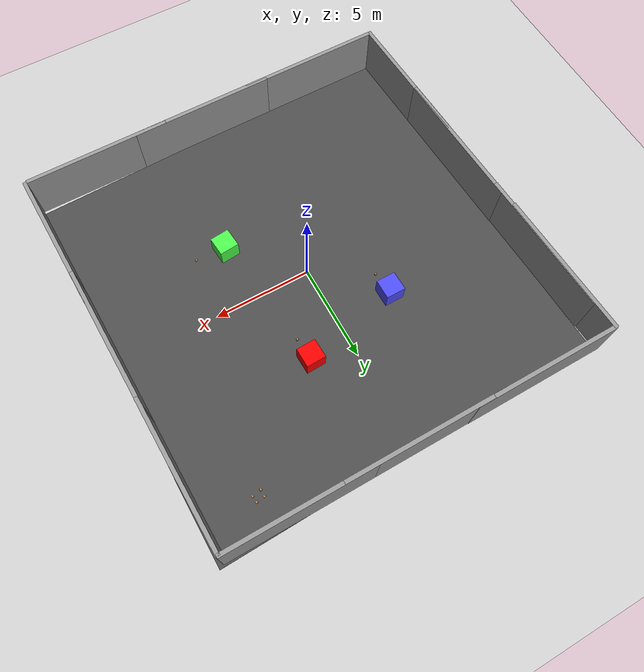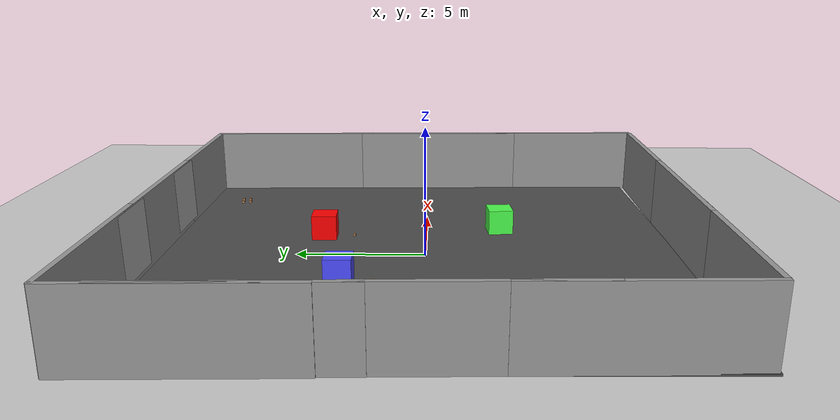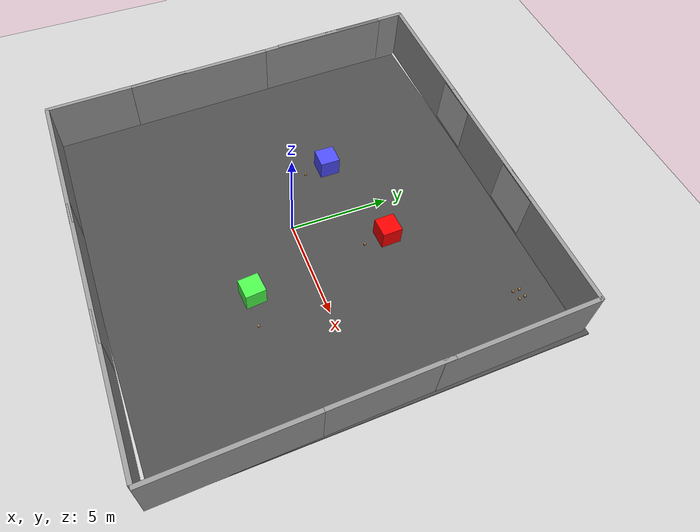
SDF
<sdf version="1.7">
 <world name="default">
  <light name="sun" type="directional">
   <pose>0 0 10 0 -0 0</pose>
   <diffuse>0.8 0.8 0.8 1</diffuse>
   <specular>0.2 0.2 0.2 1</specular>
   <attenuation>
    <range>1000</range>
    <constant>0.9</constant>
    <linear>0.01</linear>
    <quadratic>0.001</quadratic>
   </attenuation>
   <direction>-0.5 0.1 -0.9</direction>
   <spot><inner_angle>0</inner_angle><outer_angle>0</outer_angle><falloff>0</falloff></spot>
  </light>
  <model name="ground_plane">
   <static>1</static>
   <link name="link">
    <collision name="collision">
     <geometry><plane><normal>0 0 1</normal><size>100 100</size></plane></geometry>
     <surface>
      <contact><collide_bitmask>65535</collide_bitmask></contact>
      <friction><ode><mu>100</mu><mu2>50</mu2></ode></friction>
     </surface>
    </collision>
    <visual name="visual">
     <cast_shadows>0</cast_shadows>
     <geometry><plane><normal>0 0 1</normal><size>100 100</size></plane></geometry>
     <material>
      <script><uri>file://media/materials/scripts/gazebo.material</uri><name>Gazebo/Grey</name></script>
     </material>
    </visual>
   </link>
  </model>
  <gravity>0 0 -9.8</gravity>
  <magnetic_field>6e-06 2.3e-05 -4.2e-05</magnetic_field>
  <atmosphere type="adiabatic"/>
  <physics type="ode">
   <max_step_size>0.001</max_step_size>
   <real_time_factor>1</real_time_factor>
   <real_time_update_rate>1000</real_time_update_rate>
  </physics>
  <scene><ambient>0.4 0.4 0.4 1</ambient><background>0.7 0.7 0.7 1</background><shadows>1</shadows></scene>
  <audio><device>default</device></audio>
  <spherical_coordinates>
   <surface_model>EARTH_WGS84</surface_model>
   <latitude_deg>0</latitude_deg>
   <longitude_deg>0</longitude_deg>
   <elevation>0</elevation>
   <heading_deg>0</heading_deg>
  </spherical_coordinates>
  <model name="grey_wall">
   <static>1</static>
   <link name="link">
    <pose>0 0 1.4 0 -0 0</pose>
    <collision name="collision"><geometry><box><size>7.5 0.2 2.8</size></box></geometry></collision>
    <visual name="visual">
     <cast_shadows>0</cast_shadows>
     <geometry><box><size>7.5 0.2 2.8</size></box></geometry>
     <material>
      <script>
       <uri>model://grey_wall/materials/scripts</uri>
       <uri>model://grey_wall/materials/textures</uri>
       <name>vrc/grey_wall</name>
      </script>
     </material>
    </visual>
   </link>
   <pose>0.174565 10.2315 0 0 -0 0</pose>
  </model>
  <model name="grey_wall_0">
   <static>1</static>
   <link name="link">
    <pose>0 0 1.4 0 -0 0</pose>
    <collision name="collision"><geometry><box><size>7.5 0.2 2.8</size></box></geometry></collision>
    <visual name="visual">
     <cast_shadows>0</cast_shadows>
     <geometry><box><size>7.5 0.2 2.8</size></box></geometry>
     <material>
      <script>
       <uri>model://grey_wall/materials/scripts</uri>
       <uri>model://grey_wall/materials/textures</uri>
       <name>vrc/grey_wall</name>
      </script>
     </material>
    </visual>
   </link>
   <pose>0.73557 -9.85283 0 0 -0 0</pose>
  </model>
  <model name="warehousewalls">
   <link name="link">
    <pose>0 0 1.4 0 -0 0</pose>
    <visual name="visual">
     <cast_shadows>0</cast_shadows>
     <geometry><box><size>7.5 0.2 2.8</size></box></geometry>
     <material>
      <script>
       <uri>model://grey_wall/materials/scripts</uri>
       <uri>model://grey_wall/materials/textures</uri>
       <name>vrc/grey_wall</name>
      </script>
      <shader type="pixel"/>
     </material>
    </visual>
    <collision name="collision">
     <geometry><box><size>7.5 0.2 2.8</size></box></geometry>
     <surface>
      <friction>
       <ode><mu>1</mu><mu2>1</mu2><fdir1>0 0 0</fdir1><slip1>0</slip1><slip2>0</slip2></ode>
       <torsional>
        <coefficient>1</coefficient>
        <patch_radius>0</patch_radius>
        <surface_radius>0</surface_radius>
        <use_patch_radius>1</use_patch_radius>
        <ode><slip>0</slip></ode>
       </torsional>
      </friction>
      <bounce><restitution_coefficient>0</restitution_coefficient><threshold>1e+06</threshold></bounce>
      <contact>
       <collide_without_contact>0</collide_without_contact>
       <collide_without_contact_bitmask>1</collide_without_contact_bitmask>
       <collide_bitmask>1</collide_bitmask>
       <ode>
        <soft_cfm>0</soft_cfm>
        <soft_erp>0.2</soft_erp>
        <kp>1e+13</kp>
        <kd>1</kd>
        <max_vel>0.01</max_vel>
        <min_depth>0</min_depth>
       </ode>
       <bullet>
        <split_impulse>1</split_impulse>
        <split_impulse_penetration_threshold>-0.01</split_impulse_penetration_threshold>
        <soft_cfm>0</soft_cfm>
        <soft_erp>0.2</soft_erp>
        <kp>1e+13</kp>
        <kd>1</kd>
       </bullet>
      </contact>
     </surface>
    </collision>
   </link>
   <static>1</static>
   <pose>-9.69882 -1.72889 0 0 -0 1.60667</pose>
  </model>
  <model name="grey_wall_1">
   <static>1</static>
   <link name="link">
    <pose>0 0 1.4 0 -0 0</pose>
    <collision name="collision"><geometry><box><size>7.5 0.2 2.8</size></box></geometry></collision>
    <visual name="visual">
     <cast_shadows>0</cast_shadows>
     <geometry><box><size>7.5 0.2 2.8</size></box></geometry>
     <material>
      <script>
       <uri>model://grey_wall/materials/scripts</uri>
       <uri>model://grey_wall/materials/textures</uri>
       <name>vrc/grey_wall</name>
      </script>
     </material>
    </visual>
   </link>
   <pose>-6.47919 10.2469 0 0 -0 0</pose>
  </model>
  <model name="grey_wall_2">
   <static>1</static>
   <link name="link">
    <pose>0 0 1.4 0 -0 0</pose>
    <collision name="collision"><geometry><box><size>7.5 0.2 2.8</size></box></geometry></collision>
    <visual name="visual">
     <cast_shadows>0</cast_shadows>
     <geometry><box><size>7.5 0.2 2.8</size></box></geometry>
     <material>
      <script>
       <uri>model://grey_wall/materials/scripts</uri>
       <uri>model://grey_wall/materials/textures</uri>
       <name>vrc/grey_wall</name>
      </script>
     </material>
    </visual>
   </link>
   <pose>6.01224 10.2322 0 0 -0 0</pose>
  </model>
  <model name="grey_wall_3">
   <static>1</static>
   <link name="link">
    <pose>0 0 1.4 0 -0 0</pose>
    <collision name="collision"><geometry><box><size>7.5 0.2 2.8</size></box></geometry></collision>
    <visual name="visual">
     <cast_shadows>0</cast_shadows>
     <geometry><box><size>7.5 0.2 2.8</size></box></geometry>
     <material>
      <script>
       <uri>model://grey_wall/materials/scripts</uri>
       <uri>model://grey_wall/materials/textures</uri>
       <name>vrc/grey_wall</name>
      </script>
     </material>
    </visual>
   </link>
   <pose>6.57115 -9.85293 0 0 -0 0</pose>
  </model>
  <model name="grey_wall_4">
   <static>1</static>
   <link name="link">
    <pose>0 0 1.4 0 -0 0</pose>
    <collision name="collision"><geometry><box><size>7.5 0.2 2.8</size></box></geometry></collision>
    <visual name="visual">
     <cast_shadows>0</cast_shadows>
     <geometry><box><size>7.5 0.2 2.8</size></box></geometry>
     <material>
      <script>
       <uri>model://grey_wall/materials/scripts</uri>
       <uri>model://grey_wall/materials/textures</uri>
       <name>vrc/grey_wall</name>
      </script>
     </material>
    </visual>
   </link>
   <pose>-5.62393 -9.85978 0 0 -0 0</pose>
  </model>
  <model name="warehousewalls_clone">
   <link name="link">
    <pose>0 0 1.4 0 -0 0</pose>
    <visual name="visual">
     <cast_shadows>0</cast_shadows>
     <geometry><box><size>7.5 0.2 2.8</size></box></geometry>
     <material>
      <script>
       <uri>model://grey_wall/materials/scripts</uri>
       <uri>model://grey_wall/materials/textures</uri>
       <name>vrc/grey_wall</name>
      </script>
      <shader type="pixel"/>
     </material>
    </visual>
    <collision name="collision">
     <geometry><box><size>7.5 0.2 2.8</size></box></geometry>
     <surface>
      <friction>
       <ode><mu>1</mu><mu2>1</mu2><fdir1>0 0 0</fdir1><slip1>0</slip1><slip2>0</slip2></ode>
       <torsional>
        <coefficient>1</coefficient>
        <patch_radius>0</patch_radius>
        <surface_radius>0</surface_radius>
        <use_patch_radius>1</use_patch_radius>
        <ode><slip>0</slip></ode>
       </torsional>
      </friction>
      <bounce><restitution_coefficient>0</restitution_coefficient><threshold>1e+06</threshold></bounce>
      <contact>
       <collide_without_contact>0</collide_without_contact>
       <collide_without_contact_bitmask>1</collide_without_contact_bitmask>
       <collide_bitmask>1</collide_bitmask>
       <ode>
        <soft_cfm>0</soft_cfm>
        <soft_erp>0.2</soft_erp>
        <kp>1e+13</kp>
        <kd>1</kd>
        <max_vel>0.01</max_vel>
        <min_depth>0</min_depth>
       </ode>
       <bullet>
        <split_impulse>1</split_impulse>
        <split_impulse_penetration_threshold>-0.01</split_impulse_penetration_threshold>
        <soft_cfm>0</soft_cfm>
        <soft_erp>0.2</soft_erp>
        <kp>1e+13</kp>
        <kd>1</kd>
       </bullet>
      </contact>
     </surface>
    </collision>
   </link>
   <static>1</static>
   <pose>-9.54561 -6.19877 0 0 -0 1.60667</pose>
  </model>
  <model name="warehousewalls_clone_0">
   <link name="link">
    <pose>0 0 1.4 0 -0 0</pose>
    <visual name="visual">
     <cast_shadows>0</cast_shadows>
     <geometry><box><size>7.5 0.2 2.8</size></box></geometry>
     <material>
      <script>
       <uri>model://grey_wall/materials/scripts</uri>
       <uri>model://grey_wall/materials/textures</uri>
       <name>vrc/grey_wall</name>
      </script>
      <shader type="pixel"/>
     </material>
    </visual>
    <collision name="collision">
     <geometry><box><size>7.5 0.2 2.8</size></box></geometry>
     <surface>
      <friction>
       <ode><mu>1</mu><mu2>1</mu2><fdir1>0 0 0</fdir1><slip1>0</slip1><slip2>0</slip2></ode>
       <torsional>
        <coefficient>1</coefficient>
        <patch_radius>0</patch_radius>
        <surface_radius>0</surface_radius>
        <use_patch_radius>1</use_patch_radius>
        <ode><slip>0</slip></ode>
       </torsional>
      </friction>
      <bounce><restitution_coefficient>0</restitution_coefficient><threshold>1e+06</threshold></bounce>
      <contact>
       <collide_without_contact>0</collide_without_contact>
       <collide_without_contact_bitmask>1</collide_without_contact_bitmask>
       <collide_bitmask>1</collide_bitmask>
       <ode>
        <soft_cfm>0</soft_cfm>
        <soft_erp>0.2</soft_erp>
        <kp>1e+13</kp>
        <kd>1</kd>
        <max_vel>0.01</max_vel>
        <min_depth>0</min_depth>
       </ode>
       <bullet>
        <split_impulse>1</split_impulse>
        <split_impulse_penetration_threshold>-0.01</split_impulse_penetration_threshold>
        <soft_cfm>0</soft_cfm>
        <soft_erp>0.2</soft_erp>
        <kp>1e+13</kp>
        <kd>1</kd>
       </bullet>
      </contact>
     </surface>
    </collision>
   </link>
   <static>1</static>
   <pose>-9.96027 5.16742 0 0 -0 1.60667</pose>
  </model>
  <model name="warehousewalls_clone_1">
   <link name="link">
    <pose>0 0 1.4 0 -0 0</pose>
    <visual name="visual">
     <cast_shadows>0</cast_shadows>
     <geometry><box><size>7.5 0.2 2.8</size></box></geometry>
     <material>
      <script>
       <uri>model://grey_wall/materials/scripts</uri>
       <uri>model://grey_wall/materials/textures</uri>
       <name>vrc/grey_wall</name>
      </script>
      <shader type="pixel"/>
     </material>
    </visual>
    <collision name="collision">
     <geometry><box><size>7.5 0.2 2.8</size></box></geometry>
     <surface>
      <friction>
       <ode><mu>1</mu><mu2>1</mu2><fdir1>0 0 0</fdir1><slip1>0</slip1><slip2>0</slip2></ode>
       <torsional>
        <coefficient>1</coefficient>
        <patch_radius>0</patch_radius>
        <surface_radius>0</surface_radius>
        <use_patch_radius>1</use_patch_radius>
        <ode><slip>0</slip></ode>
       </torsional>
      </friction>
      <bounce><restitution_coefficient>0</restitution_coefficient><threshold>1e+06</threshold></bounce>
      <contact>
       <collide_without_contact>0</collide_without_contact>
       <collide_without_contact_bitmask>1</collide_without_contact_bitmask>
       <collide_bitmask>1</collide_bitmask>
       <ode>
        <soft_cfm>0</soft_cfm>
        <soft_erp>0.2</soft_erp>
        <kp>1e+13</kp>
        <kd>1</kd>
        <max_vel>0.01</max_vel>
        <min_depth>0</min_depth>
       </ode>
       <bullet>
        <split_impulse>1</split_impulse>
        <split_impulse_penetration_threshold>-0.01</split_impulse_penetration_threshold>
        <soft_cfm>0</soft_cfm>
        <soft_erp>0.2</soft_erp>
        <kp>1e+13</kp>
        <kd>1</kd>
       </bullet>
      </contact>
     </surface>
    </collision>
   </link>
   <static>1</static>
   <pose>-10.0546 6.55655 0 0 -0 1.60667</pose>
  </model>
  <model name="warehousewalls_clone_2">
   <link name="link">
    <pose>0 0 1.4 0 -0 0</pose>
    <visual name="visual">
     <cast_shadows>0</cast_shadows>
     <geometry><box><size>7.5 0.2 2.8</size></box></geometry>
     <material>
      <script>
       <uri>model://grey_wall/materials/scripts</uri>
       <uri>model://grey_wall/materials/textures</uri>
       <name>vrc/grey_wall</name>
      </script>
      <shader type="pixel"/>
     </material>
    </visual>
    <collision name="collision">
     <geometry><box><size>7.5 0.2 2.8</size></box></geometry>
     <surface>
      <friction>
       <ode><mu>1</mu><mu2>1</mu2><fdir1>0 0 0</fdir1><slip1>0</slip1><slip2>0</slip2></ode>
       <torsional>
        <coefficient>1</coefficient>
        <patch_radius>0</patch_radius>
        <surface_radius>0</surface_radius>
        <use_patch_radius>1</use_patch_radius>
        <ode><slip>0</slip></ode>
       </torsional>
      </friction>
      <bounce><restitution_coefficient>0</restitution_coefficient><threshold>1e+06</threshold></bounce>
      <contact>
       <collide_without_contact>0</collide_without_contact>
       <collide_without_contact_bitmask>1</collide_without_contact_bitmask>
       <collide_bitmask>1</collide_bitmask>
       <ode>
        <soft_cfm>0</soft_cfm>
        <soft_erp>0.2</soft_erp>
        <kp>1e+13</kp>
        <kd>1</kd>
        <max_vel>0.01</max_vel>
        <min_depth>0</min_depth>
       </ode>
       <bullet>
        <split_impulse>1</split_impulse>
        <split_impulse_penetration_threshold>-0.01</split_impulse_penetration_threshold>
        <soft_cfm>0</soft_cfm>
        <soft_erp>0.2</soft_erp>
        <kp>1e+13</kp>
        <kd>1</kd>
       </bullet>
      </contact>
     </surface>
    </collision>
   </link>
   <static>1</static>
   <pose>9.83496 6.51029 0 0 -0 1.60667</pose>
  </model>
  <model name="warehousewalls_clone_3">
   <link name="link">
    <pose>0 0 1.4 0 -0 0</pose>
    <visual name="visual">
     <cast_shadows>0</cast_shadows>
     <geometry><box><size>7.5 0.2 2.8</size></box></geometry>
     <material>
      <script>
       <uri>model://grey_wall/materials/scripts</uri>
       <uri>model://grey_wall/materials/textures</uri>
       <name>vrc/grey_wall</name>
      </script>
      <shader type="pixel"/>
     </material>
    </visual>
    <collision name="collision">
     <geometry><box><size>7.5 0.2 2.8</size></box></geometry>
     <surface>
      <friction>
       <ode><mu>1</mu><mu2>1</mu2><fdir1>0 0 0</fdir1><slip1>0</slip1><slip2>0</slip2></ode>
       <torsional>
        <coefficient>1</coefficient>
        <patch_radius>0</patch_radius>
        <surface_radius>0</surface_radius>
        <use_patch_radius>1</use_patch_radius>
        <ode><slip>0</slip></ode>
       </torsional>
      </friction>
      <bounce><restitution_coefficient>0</restitution_coefficient><threshold>1e+06</threshold></bounce>
      <contact>
       <collide_without_contact>0</collide_without_contact>
       <collide_without_contact_bitmask>1</collide_without_contact_bitmask>
       <collide_bitmask>1</collide_bitmask>
       <ode>
        <soft_cfm>0</soft_cfm>
        <soft_erp>0.2</soft_erp>
        <kp>1e+13</kp>
        <kd>1</kd>
        <max_vel>0.01</max_vel>
        <min_depth>0</min_depth>
       </ode>
       <bullet>
        <split_impulse>1</split_impulse>
        <split_impulse_penetration_threshold>-0.01</split_impulse_penetration_threshold>
        <soft_cfm>0</soft_cfm>
        <soft_erp>0.2</soft_erp>
        <kp>1e+13</kp>
        <kd>1</kd>
       </bullet>
      </contact>
     </surface>
    </collision>
   </link>
   <static>1</static>
   <pose>10.072 -0.441598 0 0 -0 1.60667</pose>
  </model>
  <model name="warehousewalls_clone_4">
   <link name="link">
    <pose>0 0 1.4 0 -0 0</pose>
    <visual name="visual">
     <cast_shadows>0</cast_shadows>
     <geometry><box><size>7.5 0.2 2.8</size></box></geometry>
     <material>
      <script>
       <uri>model://grey_wall/materials/scripts</uri>
       <uri>model://grey_wall/materials/textures</uri>
       <name>vrc/grey_wall</name>
      </script>
      <shader type="pixel"/>
     </material>
    </visual>
    <collision name="collision">
     <geometry><box><size>7.5 0.2 2.8</size></box></geometry>
     <surface>
      <friction>
       <ode><mu>1</mu><mu2>1</mu2><fdir1>0 0 0</fdir1><slip1>0</slip1><slip2>0</slip2></ode>
       <torsional>
        <coefficient>1</coefficient>
        <patch_radius>0</patch_radius>
        <surface_radius>0</surface_radius>
        <use_patch_radius>1</use_patch_radius>
        <ode><slip>0</slip></ode>
       </torsional>
      </friction>
      <bounce><restitution_coefficient>0</restitution_coefficient><threshold>1e+06</threshold></bounce>
      <contact>
       <collide_without_contact>0</collide_without_contact>
       <collide_without_contact_bitmask>1</collide_without_contact_bitmask>
       <collide_bitmask>1</collide_bitmask>
       <ode>
        <soft_cfm>0</soft_cfm>
        <soft_erp>0.2</soft_erp>
        <kp>1e+13</kp>
        <kd>1</kd>
        <max_vel>0.01</max_vel>
        <min_depth>0</min_depth>
       </ode>
       <bullet>
        <split_impulse>1</split_impulse>
        <split_impulse_penetration_threshold>-0.01</split_impulse_penetration_threshold>
        <soft_cfm>0</soft_cfm>
        <soft_erp>0.2</soft_erp>
        <kp>1e+13</kp>
        <kd>1</kd>
       </bullet>
      </contact>
     </surface>
    </collision>
   </link>
   <static>1</static>
   <pose>10.2826 -6.13744 0 0 -0 1.60667</pose>
  </model>
  <model name="asphalt_plane">
   <static>1</static>
   <link name="link">
    <collision name="collision"><geometry><box><size>20 20 0.1</size></box></geometry></collision>
    <visual name="visual">
     <cast_shadows>0</cast_shadows>
     <geometry><box><size>20 20 0.1</size></box></geometry>
     <material>
      <script>
       <uri>model://asphalt_plane/materials/scripts</uri>
       <uri>model://asphalt_plane/materials/textures</uri>
       <name>vrc/asphalt</name>
      </script>
     </material>
    </visual>
   </link>
   <pose>0.241232 0.208844 -0 0 -0 0.022466</pose>
  </model>
  <model name="wood_cube_10cm">
   <link name="link">
    <pose>0 0 0.05 0 -0 0</pose>
    <inertial>
     <mass>0.5167</mass>
     <inertia>
      <ixx>0.000861167</ixx>
      <ixy>0</ixy>
      <ixz>0</ixz>
      <iyy>0.000861167</iyy>
      <iyz>0</iyz>
      <izz>0.000861167</izz>
     </inertia>
    </inertial>
    <collision name="collision">
     <geometry><box><size>0.1 0.1 0.1</size></box></geometry>
     <surface>
      <contact>
       <poissons_ratio>0.347</poissons_ratio>
       <elastic_modulus>8.8e+09</elastic_modulus>
       <ode><kp>100000</kp><kd>100</kd><max_vel>100</max_vel><min_depth>0.001</min_depth></ode>
      </contact>
      <friction>
       <torsional>
        <coefficient>1</coefficient>
        <use_patch_radius>0</use_patch_radius>
        <surface_radius>0.01</surface_radius>
       </torsional>
      </friction>
     </surface>
    </collision>
    <visual name="visual">
     <geometry><box><size>0.1 0.1 0.1</size></box></geometry>
     <material>
      <script><uri>file://media/materials/scripts/gazebo.material</uri><name>Gazebo/Wood</name></script>
     </material>
    </visual>
   </link>
   <pose>4.58227 -3.26625 0.048987 0 -0 0</pose>
  </model>
  <model name="wood_cube_10cm_clone">
   <link name="link">
    <pose>0 0 0.05 0 -0 0</pose>
    <inertial>
     <mass>0.5167</mass>
     <inertia>
      <ixx>0.000861167</ixx>
      <ixy>0</ixy>
      <ixz>0</ixz>
      <iyy>0.000861167</iyy>
      <iyz>0</iyz>
      <izz>0.000861167</izz>
     </inertia>
    </inertial>
    <collision name="collision">
     <geometry><box><size>0.1 0.1 0.1</size></box></geometry>
     <surface>
      <contact>
       <poissons_ratio>0.347</poissons_ratio>
       <elastic_modulus>8.8e+09</elastic_modulus>
       <ode><kp>100000</kp><kd>100</kd><max_vel>100</max_vel><min_depth>0.001</min_depth></ode>
      </contact>
      <friction>
       <torsional>
        <coefficient>1</coefficient>
        <use_patch_radius>0</use_patch_radius>
        <surface_radius>0.01</surface_radius>
       </torsional>
      </friction>
     </surface>
    </collision>
    <visual name="visual">
     <geometry><box><size>0.1 0.1 0.1</size></box></geometry>
     <material>
      <script><uri>file://media/materials/scripts/gazebo.material</uri><name>Gazebo/Wood</name></script>
     </material>
    </visual>
   </link>
   <pose>7.41055 8.42585 0.048987 0 -0 0</pose>
  </model>
  <model name="wood_cube_10cm_clone_0">
   <link name="link">
    <pose>0 0 0.05 0 -0 0</pose>
    <inertial>
     <mass>0.5167</mass>
     <inertia>
      <ixx>0.000861167</ixx>
      <ixy>0</ixy>
      <ixz>0</ixz>
      <iyy>0.000861167</iyy>
      <iyz>0</iyz>
      <izz>0.000861167</izz>
     </inertia>
    </inertial>
    <collision name="collision">
     <geometry><box><size>0.1 0.1 0.1</size></box></geometry>
     <surface>
      <contact>
       <poissons_ratio>0.347</poissons_ratio>
       <elastic_modulus>8.8e+09</elastic_modulus>
       <ode><kp>100000</kp><kd>100</kd><max_vel>100</max_vel><min_depth>0.001</min_depth></ode>
      </contact>
      <friction>
       <torsional>
        <coefficient>1</coefficient>
        <use_patch_radius>0</use_patch_radius>
        <surface_radius>0.01</surface_radius>
       </torsional>
      </friction>
     </surface>
    </collision>
    <visual name="visual">
     <geometry><box><size>0.1 0.1 0.1</size></box></geometry>
     <material>
      <script><uri>file://media/materials/scripts/gazebo.material</uri><name>Gazebo/Wood</name></script>
     </material>
    </visual>
   </link>
   <pose>7.373 8.73497 0.048987 0 -0 0</pose>
  </model>
  <model name="wood_cube_10cm_clone_1">
   <link name="link">
    <pose>0 0 0.05 0 -0 0</pose>
    <inertial>
     <mass>0.5167</mass>
     <inertia>
      <ixx>0.000861167</ixx>
      <ixy>0</ixy>
      <ixz>0</ixz>
      <iyy>0.000861167</iyy>
      <iyz>0</iyz>
      <izz>0.000861167</izz>
     </inertia>
    </inertial>
    <collision name="collision">
     <geometry><box><size>0.1 0.1 0.1</size></box></geometry>
     <surface>
      <contact>
       <poissons_ratio>0.347</poissons_ratio>
       <elastic_modulus>8.8e+09</elastic_modulus>
       <ode><kp>100000</kp><kd>100</kd><max_vel>100</max_vel><min_depth>0.001</min_depth></ode>
      </contact>
      <friction>
       <torsional>
        <coefficient>1</coefficient>
        <use_patch_radius>0</use_patch_radius>
        <surface_radius>0.01</surface_radius>
       </torsional>
      </friction>
     </surface>
    </collision>
    <visual name="visual">
     <geometry><box><size>0.1 0.1 0.1</size></box></geometry>
     <material>
      <script><uri>file://media/materials/scripts/gazebo.material</uri><name>Gazebo/Wood</name></script>
     </material>
    </visual>
   </link>
   <pose>6.96372 8.67486 0.048987 0 -0 0</pose>
  </model>
  <model name="wood_cube_10cm_clone_2">
   <link name="link">
    <pose>0 0 0.05 0 -0 0</pose>
    <inertial>
     <mass>0.5167</mass>
     <inertia>
      <ixx>0.000861167</ixx>
      <ixy>0</ixy>
      <ixz>0</ixz>
      <iyy>0.000861167</iyy>
      <iyz>0</iyz>
      <izz>0.000861167</izz>
     </inertia>
    </inertial>
    <collision name="collision">
     <geometry><box><size>0.1 0.1 0.1</size></box></geometry>
     <surface>
      <contact>
       <poissons_ratio>0.347</poissons_ratio>
       <elastic_modulus>8.8e+09</elastic_modulus>
       <ode><kp>100000</kp><kd>100</kd><max_vel>100</max_vel><min_depth>0.001</min_depth></ode>
      </contact>
      <friction>
       <torsional>
        <coefficient>1</coefficient>
        <use_patch_radius>0</use_patch_radius>
        <surface_radius>0.01</surface_radius>
       </torsional>
      </friction>
     </surface>
    </collision>
    <visual name="visual">
     <geometry><box><size>0.1 0.1 0.1</size></box></geometry>
     <material>
      <script><uri>file://media/materials/scripts/gazebo.material</uri><name>Gazebo/Wood</name></script>
     </material>
    </visual>
   </link>
   <pose>6.96556 8.34309 0.048987 0 -0 0</pose>
  </model>
  <model name="wood_cube_10cm_clone_3">
   <link name="link">
    <pose>0 0 0.05 0 -0 0</pose>
    <inertial>
     <mass>0.5167</mass>
     <inertia>
      <ixx>0.000861167</ixx>
      <ixy>0</ixy>
      <ixz>0</ixz>
      <iyy>0.000861167</iyy>
      <iyz>0</iyz>
      <izz>0.000861167</izz>
     </inertia>
    </inertial>
    <collision name="collision">
     <geometry><box><size>0.1 0.1 0.1</size></box></geometry>
     <surface>
      <contact>
       <poissons_ratio>0.347</poissons_ratio>
       <elastic_modulus>8.8e+09</elastic_modulus>
       <ode><kp>100000</kp><kd>100</kd><max_vel>100</max_vel><min_depth>0.001</min_depth></ode>
      </contact>
      <friction>
       <torsional>
        <coefficient>1</coefficient>
        <use_patch_radius>0</use_patch_radius>
        <surface_radius>0.01</surface_radius>
       </torsional>
      </friction>
     </surface>
    </collision>
    <visual name="visual">
     <geometry><box><size>0.1 0.1 0.1</size></box></geometry>
     <material>
      <script><uri>file://media/materials/scripts/gazebo.material</uri><name>Gazebo/Wood</name></script>
     </material>
    </visual>
   </link>
   <pose>2.16171 2.95346 0.048987 0 -0 0</pose>
  </model>
  <model name="unit_box">
   <static>1</static>
   <link name="link">
    <inertial>
     <mass>1</mass>
     <inertia>
      <ixx>0.166667</ixx>
      <ixy>0</ixy>
      <ixz>0</ixz>
      <iyy>0.166667</iyy>
      <iyz>0</iyz>
      <izz>0.166667</izz>
     </inertia>
    </inertial>
    <visual name="visual">
     <geometry><box><size>1 1 1</size></box></geometry>
     <material>
      <script><name>Gazebo/Grey</name><uri>file://media/materials/scripts/gazebo.material</uri></script>
      <shader type="pixel"><normal_map>__default__</normal_map></shader>
      <ambient>1 0 0 0</ambient>
      <diffuse>0.7 0.7 0.7 1</diffuse>
      <specular>0.01 0.01 0.01 1</specular>
      <emissive>0 0 0 1</emissive>
     </material>
    </visual>
    <collision name="collision">
     <geometry><box><size>1 1 1</size></box></geometry>
     <surface>
      <friction>
       <ode><mu>1</mu><mu2>1</mu2><fdir1>0 0 0</fdir1><slip1>0</slip1><slip2>0</slip2></ode>
       <torsional>
        <coefficient>1</coefficient>
        <patch_radius>0</patch_radius>
        <surface_radius>0</surface_radius>
        <use_patch_radius>1</use_patch_radius>
        <ode><slip>0</slip></ode>
       </torsional>
      </friction>
      <bounce><restitution_coefficient>0</restitution_coefficient><threshold>1e+06</threshold></bounce>
      <contact>
       <collide_without_contact>0</collide_without_contact>
       <collide_without_contact_bitmask>1</collide_without_contact_bitmask>
       <collide_bitmask>1</collide_bitmask>
       <ode>
        <soft_cfm>0</soft_cfm>
        <soft_erp>0.2</soft_erp>
        <kp>1e+13</kp>
        <kd>1</kd>
        <max_vel>0.01</max_vel>
        <min_depth>0</min_depth>
       </ode>
       <bullet>
        <split_impulse>1</split_impulse>
        <split_impulse_penetration_threshold>-0.01</split_impulse_penetration_threshold>
        <soft_cfm>0</soft_cfm>
        <soft_erp>0.2</soft_erp>
        <kp>1e+13</kp>
        <kd>1</kd>
       </bullet>
      </contact>
     </surface>
    </collision>
   </link>
   <static>0</static>
   <pose>2.07986 4.15109 0.550002 -4e-06 -0 0.032775</pose>
  </model>
  <model name="unitboxgreen">
   <static>1</static>
   <link name="link">
    <inertial>
     <mass>1</mass>
     <inertia>
      <ixx>0.166667</ixx>
      <ixy>0</ixy>
      <ixz>0</ixz>
      <iyy>0.166667</iyy>
      <iyz>0</iyz>
      <izz>0.166667</izz>
     </inertia>
    </inertial>
    <visual name="visual">
     <geometry><box><size>1 1 1</size></box></geometry>
     <material>
      <script><name>Gazebo/Grey</name><uri>file://media/materials/scripts/gazebo.material</uri></script>
      <shader type="pixel"><normal_map>__default__</normal_map></shader>
      <ambient>0.3 1 0.3 1</ambient>
      <diffuse>0.7 0.7 0.7 1</diffuse>
      <specular>0.01 0.01 0.01 1</specular>
      <emissive>0 0 0 1</emissive>
     </material>
    </visual>
    <collision name="collision">
     <geometry><box><size>1 1 1</size></box></geometry>
     <surface>
      <friction>
       <ode><mu>1</mu><mu2>1</mu2><fdir1>0 0 0</fdir1><slip1>0</slip1><slip2>0</slip2></ode>
       <torsional>
        <coefficient>1</coefficient>
        <patch_radius>0</patch_radius>
        <surface_radius>0</surface_radius>
        <use_patch_radius>1</use_patch_radius>
        <ode><slip>0</slip></ode>
       </torsional>
      </friction>
      <bounce><restitution_coefficient>0</restitution_coefficient><threshold>1e+06</threshold></bounce>
      <contact>
       <collide_without_contact>0</collide_without_contact>
       <collide_without_contact_bitmask>1</collide_without_contact_bitmask>
       <collide_bitmask>1</collide_bitmask>
       <ode>
        <soft_cfm>0</soft_cfm>
        <soft_erp>0.2</soft_erp>
        <kp>1e+13</kp>
        <kd>1</kd>
        <max_vel>0.01</max_vel>
        <min_depth>0</min_depth>
       </ode>
       <bullet>
        <split_impulse>1</split_impulse>
        <split_impulse_penetration_threshold>-0.01</split_impulse_penetration_threshold>
        <soft_cfm>0</soft_cfm>
        <soft_erp>0.2</soft_erp>
        <kp>1e+13</kp>
        <kd>1</kd>
       </bullet>
      </contact>
     </surface>
    </collision>
   </link>
   <static>0</static>
   <pose>3.01907 -3.04284 0.549999 -6e-06 3e-06 0.094034</pose>
  </model>
  <model name="unitboxblue">
   <static>1</static>
   <link name="link">
    <inertial>
     <mass>1</mass>
     <inertia>
      <ixx>0.166667</ixx>
      <ixy>0</ixy>
      <ixz>0</ixz>
      <iyy>0.166667</iyy>
      <iyz>0</iyz>
      <izz>0.166667</izz>
     </inertia>
    </inertial>
    <visual name="visual">
     <geometry><box><size>1 1 1</size></box></geometry>
     <material>
      <script><name>Gazebo/Grey</name><uri>file://media/materials/scripts/gazebo.material</uri></script>
      <shader type="pixel"><normal_map>__default__</normal_map></shader>
      <ambient>0.3 0.3 1 1</ambient>
      <diffuse>0.7 0.7 0.7 1</diffuse>
      <specular>0.01 0.01 0.01 1</specular>
      <emissive>0 0 0 1</emissive>
     </material>
    </visual>
    <collision name="collision">
     <geometry><box><size>1 1 1</size></box></geometry>
     <surface>
      <friction>
       <ode><mu>1</mu><mu2>1</mu2><fdir1>0 0 0</fdir1><slip1>0</slip1><slip2>0</slip2></ode>
       <torsional>
        <coefficient>1</coefficient>
        <patch_radius>0</patch_radius>
        <surface_radius>0</surface_radius>
        <use_patch_radius>1</use_patch_radius>
        <ode><slip>0</slip></ode>
       </torsional>
      </friction>
      <bounce><restitution_coefficient>0</restitution_coefficient><threshold>1e+06</threshold></bounce>
      <contact>
       <collide_without_contact>0</collide_without_contact>
       <collide_without_contact_bitmask>1</collide_without_contact_bitmask>
       <collide_bitmask>1</collide_bitmask>
       <ode>
        <soft_cfm>0</soft_cfm>
        <soft_erp>0.2</soft_erp>
        <kp>1e+13</kp>
        <kd>1</kd>
        <max_vel>0.01</max_vel>
        <min_depth>0</min_depth>
       </ode>
       <bullet>
        <split_impulse>1</split_impulse>
        <split_impulse_penetration_threshold>-0.01</split_impulse_penetration_threshold>
        <soft_cfm>0</soft_cfm>
        <soft_erp>0.2</soft_erp>
        <kp>1e+13</kp>
        <kd>1</kd>
       </bullet>
      </contact>
     </surface>
    </collision>
   </link>
   <static>0</static>
   <pose>-3.00003 3.00113 0.550002 -4e-06 -0 -0.001763</pose>
  </model>
  <model name="rwthlogo">
   <static>1</static>
   <link name="link">
    <collision name="collision">
     <geometry><plane><normal>0 0 1</normal><size>2.5 2.5</size></plane></geometry>
     <surface><friction><ode><mu>2.5</mu><mu2>1.25</mu2></ode></friction></surface>
    </collision>
    <visual name="visual">
     <cast_shadows>0</cast_shadows>
     <geometry><plane><normal>0 0 1</normal><size>2.5 2.5</size></plane></geometry>
     <material>
      <script>
       <uri>model://rwthlogo/materials/scripts</uri>
       <uri>model://rwthlogo/materials/textures/</uri>
       <name>RWTHLogo/Image</name>
      </script>
     </material>
    </visual>
   </link>
   <pose>-3 10.1 1.5 1.55 -0 0</pose>
  </model>
  <model name="rwthlogo_0">
   <static>1</static>
   <link name="link">
    <collision name="collision">
     <geometry><plane><normal>0 0 1</normal><size>2.5 2.5</size></plane></geometry>
     <surface><friction><ode><mu>2.5</mu><mu2>1.25</mu2></ode></friction></surface>
    </collision>
    <visual name="visual">
     <cast_shadows>0</cast_shadows>
     <geometry><plane><normal>0 0 1</normal><size>2.5 2.5</size></plane></geometry>
     <material>
      <script>
       <uri>model://rwthlogo/materials/scripts</uri>
       <uri>model://rwthlogo/materials/textures/</uri>
       <name>RWTHLogo/Image</name>
      </script>
     </material>
    </visual>
   </link>
   <pose>3 10.1 1.5 1.55 -0 0</pose>
  </model>
  <model name="wood_cube_10cm_clone_3_clone">
   <link name="link">
    <pose>0 0 0.05 0 -0 0</pose>
    <inertial>
     <mass>0.5167</mass>
     <inertia>
      <ixx>0.000861167</ixx>
      <ixy>0</ixy>
      <ixz>0</ixz>
      <iyy>0.000861167</iyy>
      <iyz>0</iyz>
      <izz>0.000861167</izz>
     </inertia>
    </inertial>
    <collision name="collision">
     <geometry><box><size>0.1 0.1 0.1</size></box></geometry>
     <surface>
      <contact>
       <poissons_ratio>0.347</poissons_ratio>
       <elastic_modulus>8.8e+09</elastic_modulus>
       <ode><kp>100000</kp><kd>100</kd><max_vel>100</max_vel><min_depth>0.001</min_depth></ode>
      </contact>
      <friction>
       <torsional>
        <coefficient>1</coefficient>
        <use_patch_radius>0</use_patch_radius>
        <surface_radius>0.01</surface_radius>
       </torsional>
      </friction>
     </surface>
    </collision>
    <visual name="visual">
     <geometry><box><size>0.1 0.1 0.1</size></box></geometry>
     <material>
      <script><uri>file://media/materials/scripts/gazebo.material</uri><name>Gazebo/Wood</name></script>
     </material>
    </visual>
   </link>
   <pose>-2.94932 1.80509 0.048987 0 -0 0</pose>
  </model>
 </world>
</sdf>
